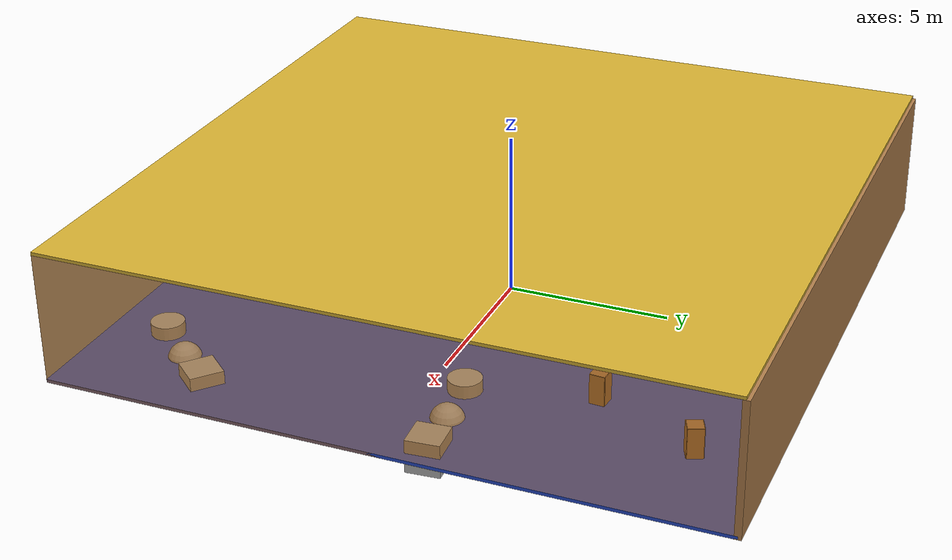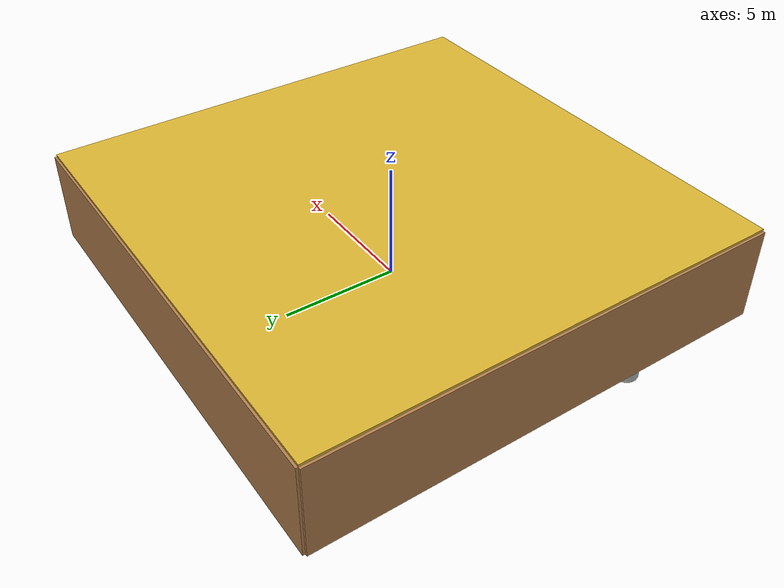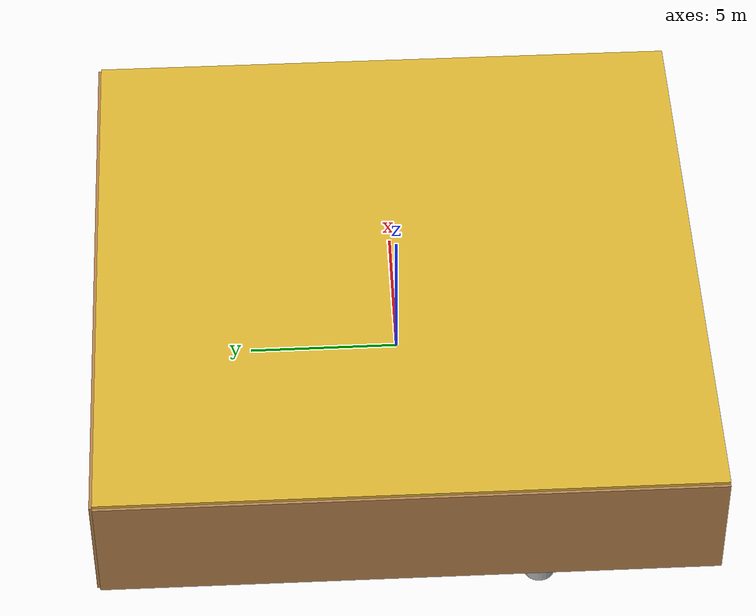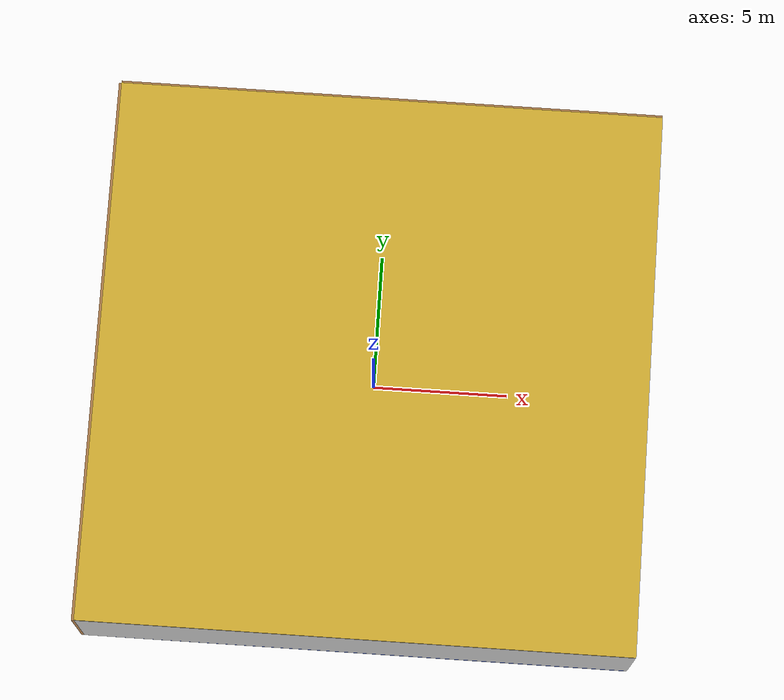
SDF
<sdf version="1.4">
 <world name="default">
  <physics type="ode">
   <max_step_size>0.001</max_step_size>
   <real_time_factor>1</real_time_factor>
   <real_time_update_rate>1000</real_time_update_rate>
   <gravity>0 0 -9.8</gravity>
  </physics>
  <scene><ambient>0.4 0.4 0.4 1</ambient><background>0.7 0.7 0.7 1</background><shadows>1</shadows></scene>
  <model name="Surrounding">
   <static>1</static>
   <link name="Ceiling">
    <collision name="Ceiling_Collision"><geometry><box><size>20 20 0.1</size></box></geometry></collision>
    <visual name="Ceiling_Visual">
     <geometry><box><size>20 20 0.1</size></box></geometry>
     <material>
      <script><uri>file://media/materials/scripts/gazebo.material</uri><name>Gazebo/Gold</name></script>
     </material>
    </visual>
    <pose>0 0 4.05 0 0 0</pose>
   </link>
   <link name="Wall_South">
    <collision name="Wall_South_Collision">
     <geometry><box><size>20 0 4</size></box></geometry>
     <pose>0 0 2 0 -0 0</pose>
    </collision>
    <visual name="Wall_South_Visual">
     <pose>0 0 2 0 -0 0</pose>
     <geometry><box><size>20 0 4</size></box></geometry>
     <material>
      <script><uri>file://media/materials/scripts/gazebo.material</uri><name>Gazebo/JointAnchor</name></script>
     </material>
    </visual>
    <velocity_decay><linear>0</linear><angular>0</angular></velocity_decay>
    <pose>0 -10 0 0 -0 0</pose>
   </link>
   <link name="Wall_East">
    <collision name="Wall_21_Collision">
     <geometry><box><size>20 0 4</size></box></geometry>
     <pose>0 0 2 0 -0 0</pose>
    </collision>
    <visual name="Wall_21_Visual">
     <pose>0 0 2 0 -0 0</pose>
     <geometry><box><size>20 0 4</size></box></geometry>
     <material>
      <script>
       <uri>file://media/materials/scripts/gazebo.material</uri>
       <name>Gazebo/OrangeTransparent</name>
      </script>
     </material>
    </visual>
    <velocity_decay><linear>0</linear><angular>0</angular></velocity_decay>
    <pose>10 0 0 0 -0 1.5708</pose>
   </link>
   <link name="Wall_North">
    <collision name="Wall_22_Collision">
     <geometry><box><size>20 0.2 4</size></box></geometry>
     <pose>0 0 2 0 -0 0</pose>
    </collision>
    <visual name="Wall_22_Visual">
     <pose>0 0 2 0 -0 0</pose>
     <geometry><box><size>20 0.2 4</size></box></geometry>
     <material>
      <script><uri>file://media/materials/scripts/gazebo.material</uri><name>Gazebo/WoodPallet</name></script>
     </material>
    </visual>
    <velocity_decay><linear>0</linear><angular>0</angular></velocity_decay>
    <pose>0 10 0 0 -0 0</pose>
   </link>
   <link name="Wall_West">
    <collision name="Wall_23_Collision">
     <geometry><box><size>20 0.2 4</size></box></geometry>
     <pose>0 0 2 0 -0 0</pose>
    </collision>
    <visual name="Wall_23_Visual">
     <pose>0 0 2 0 -0 0</pose>
     <geometry><box><size>20 0.2 4</size></box></geometry>
     <material>
      <script><uri>file://media/materials/scripts/gazebo.material</uri><name>Gazebo/WoodPallet</name></script>
     </material>
    </visual>
    <velocity_decay><linear>0</linear><angular>0</angular></velocity_decay>
    <pose>-10 0 0 0 0 -1.5708</pose>
   </link>
   <link name="Ground_link">
    <collision name="collision">
     <pose>0 0 .05 0 -0 0</pose>
     <geometry><box><size>20 20 0.1</size></box></geometry>
    </collision>
    <visual name="visual">
     <pose>0 0 .05 0 -0 0</pose>
     <geometry><box><size>20 20 0.1</size></box></geometry>
     <material>
      <script><uri>file://media/materials/scripts/gazebo.material</uri><name>Gazebo/BlueLaser</name></script>
     </material>
    </visual>
   </link>
   <static>1</static>
  </model>
  <spherical_coordinates>
   <surface_model>EARTH_WGS84</surface_model>
   <latitude_deg>0</latitude_deg>
   <longitude_deg>0</longitude_deg>
   <elevation>0</elevation>
   <heading_deg>0</heading_deg>
  </spherical_coordinates>
  <light name="lightball_0" type="diffuse">
   <diffuse>0.8 0.8 0.8 1</diffuse>
   <specular>0.2 0.2 0.2 1</specular>
   <attenuation>
    <range>100</range>
    <constant>0.7</constant>
    <linear>0.01</linear>
    <quadratic>0.001</quadratic>
   </attenuation>
   <direction>-0.5 0.1 -0.9</direction>
   <pose>-1.03867309464 3.84901658464 2.92764349432 0 0 0</pose>
  </light>
  <light name="lightball_1" type="diffuse">
   <diffuse>0.8 0.8 0.8 1</diffuse>
   <specular>0.2 0.2 0.2 1</specular>
   <attenuation>
    <range>100</range>
    <constant>0.7</constant>
    <linear>0.01</linear>
    <quadratic>0.001</quadratic>
   </attenuation>
   <direction>-0.5 0.1 -0.9</direction>
   <pose>4.19361154369 7.47298973144 3.52028026577 0 0 0</pose>
  </light>
  <light name="lightball_2" type="diffuse">
   <diffuse>0.8 0.8 0.8 1</diffuse>
   <specular>0.2 0.2 0.2 1</specular>
   <attenuation>
    <range>100</range>
    <constant>0.7</constant>
    <linear>0.01</linear>
    <quadratic>0.001</quadratic>
   </attenuation>
   <direction>-0.5 0.1 -0.9</direction>
   <pose>-7.1839813901 -4.95605460389 3.15081754041 0 0 0</pose>
  </light>
  <light name="lightball_3" type="diffuse">
   <diffuse>0.8 0.8 0.8 1</diffuse>
   <specular>0.2 0.2 0.2 1</specular>
   <attenuation>
    <range>100</range>
    <constant>0.7</constant>
    <linear>0.01</linear>
    <quadratic>0.001</quadratic>
   </attenuation>
   <direction>-0.5 0.1 -0.9</direction>
   <pose>0.475011559814 4.94725970304 1.84162193524 0 0 0</pose>
  </light>
  <light name="lightball_4" type="diffuse">
   <diffuse>0.8 0.8 0.8 1</diffuse>
   <specular>0.2 0.2 0.2 1</specular>
   <attenuation>
    <range>100</range>
    <constant>0.7</constant>
    <linear>0.01</linear>
    <quadratic>0.001</quadratic>
   </attenuation>
   <direction>-0.5 0.1 -0.9</direction>
   <pose>-7.60623357414 -4.85842995103 2.47146247468 0 0 0</pose>
  </light>
  <light name="lightball_5" type="diffuse">
   <diffuse>0.8 0.8 0.8 1</diffuse>
   <specular>0.2 0.2 0.2 1</specular>
   <attenuation>
    <range>100</range>
    <constant>0.7</constant>
    <linear>0.01</linear>
    <quadratic>0.001</quadratic>
   </attenuation>
   <direction>-0.5 0.1 -0.9</direction>
   <pose>4.58643596669 -9.49304043358 3.47659064128 0 0 0</pose>
  </light>
  <light name="lightball_6" type="diffuse">
   <diffuse>0.8 0.8 0.8 1</diffuse>
   <specular>0.2 0.2 0.2 1</specular>
   <attenuation>
    <range>100</range>
    <constant>0.7</constant>
    <linear>0.01</linear>
    <quadratic>0.001</quadratic>
   </attenuation>
   <direction>-0.5 0.1 -0.9</direction>
   <pose>3.49342287098 2.01939849094 0.947996456917 0 0 0</pose>
  </light>
  <light name="lightball_7" type="diffuse">
   <diffuse>0.8 0.8 0.8 1</diffuse>
   <specular>0.2 0.2 0.2 1</specular>
   <attenuation>
    <range>100</range>
    <constant>0.7</constant>
    <linear>0.01</linear>
    <quadratic>0.001</quadratic>
   </attenuation>
   <direction>-0.5 0.1 -0.9</direction>
   <pose>1.10619452252 -6.42514952368 2.47697666834 0 0 0</pose>
  </light>
  <include>
   <uri>model://textured_shapes</uri>
   <pose>-8.03888894609 -4.33058438501 0 0 0 1.45001814659</pose>
  </include>
  <include><uri>model://table</uri><pose>-4.71681953265 -1.56873584203 0 0 0 2.74599016941</pose></include>
  <include><uri>model://table</uri><pose>-4.35524284481 4.21531173952 0 0 0 0.262586838464</pose></include>
  <include><uri>model://table</uri><pose>0.948946008078 1.71463731423 0 0 0 0.191043808094</pose></include>
  <include><uri>model://table</uri><pose>1.44365701996 4.46395835016 0 0 0 3.0275750732</pose></include>
  <include><uri>model://cabinet</uri><pose>5.29891270252 4.75835628975 0 0 0 1.49257592397</pose></include>
  <include>
   <uri>model://textured_shapes</uri>
   <pose>7.4008875177 -7.08567766702 0 0 0 2.4267339377</pose>
  </include>
  <include>
   <uri>model://textured_shapes</uri>
   <pose>7.6449458014 1.21542209122 0 0 0 1.6469767927</pose>
  </include>
  <include><uri>model://cabinet</uri><pose>6.87626356068 7.92845309927 0 0 0 0.410442071777</pose></include>
 </world>
</sdf>

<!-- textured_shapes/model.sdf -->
<sdf version="1.6">
  <model name="textured_shapes">
    <pose>0 0 0.5 0 0 0</pose>
    <link name="box">
      <pose>0 -1.5 0 0 0 0</pose>
      <collision name="collision">
        <geometry>
          <box>
            <size>1 1 1</size>
          </box>
        </geometry>
      </collision>
      <visual name="visual">
        <geometry>
          <box>
            <size>1 1 1</size>
          </box>
        </geometry>
        <material>
          <script>
            <uri>model://../model_source/models/textured_shapes/materials/scripts</uri>
            <uri>model://../model_source/models/textured_shapes/materials/textures</uri>
            <name>TexturedShape/Squares</name>
          </script>
        </material>
      </visual>
    </link>
    <link name="sphere">
      <collision name="collision">
        <geometry>
          <sphere>
            <radius>0.5</radius>
          </sphere>
        </geometry>
      </collision>
      <visual name="visual">
        <geometry>
          <sphere>
            <radius>0.5</radius>
          </sphere>
        </geometry>
        <material>
          <script>
            <uri>model://../model_source/models/textured_shapes/materials/scripts</uri>
            <uri>model://../model_source/models/textured_shapes/materials/textures</uri>
            <name>TexturedShape/Squares</name>
          </script>
        </material>
      </visual>
    </link>
    <link name="cylinder">
      <pose>0 1.5 0 0 0 0</pose>
      <collision name="collision">
        <geometry>
          <cylinder>
            <radius>0.5</radius>
            <length>1</length>
          </cylinder>
        </geometry>
      </collision>
      <visual name="visual">
        <geometry>
          <cylinder>
            <radius>0.5</radius>
            <length>1</length>
          </cylinder>
        </geometry>
        <material>
          <script>
            <uri>model://../model_source/models/textured_shapes/materials/scripts</uri>
            <uri>model://../model_source/models/textured_shapes/materials/textures</uri>
            <name>TexturedShape/Squares</name>
          </script>
        </material>
      </visual>
    </link>
  </model>
</sdf>

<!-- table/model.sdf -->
<sdf version="1.5">
  <model name="table">
    <static>true</static>
    <link name="link">
      <collision name="surface">
        <pose>0 0 1.0 0 0 0</pose>
        <geometry>
          <box>
            <size>1.5 0.8 0.03</size>
          </box>
        </geometry>
        <surface>
          <friction>
            <ode>
              <mu>0.6</mu>
              <mu2>0.6</mu2>
            </ode>
          </friction>
        </surface>
      </collision>
      <visual name="visual1">
        <pose>0 0 1.0 0 0 0</pose>
        <geometry>
          <box>
            <size>1.5 0.8 0.03</size>
          </box>
        </geometry>
        <material>
          <script>
            <uri>model://media/materials/scripts/gazebo.material</uri>
            <name>Gazebo/Wood</name>
          </script>
        </material>
      </visual>
      <collision name="front_left_leg">
        <pose>0.68 0.38 0.5 0 0 0</pose>
        <geometry>
          <cylinder>
            <radius>0.02</radius>
            <length>1.0</length>
          </cylinder>
        </geometry>
      </collision>
      <visual name="front_left_leg">
        <pose>0.68 0.38 0.5 0 0 0</pose>
        <geometry>
          <cylinder>
            <radius>0.02</radius>
            <length>1.0</length>
          </cylinder>
        </geometry>
        <material>
          <script>
            <uri>model://media/materials/scripts/gazebo.material</uri>
            <name>Gazebo/Grey</name>
          </script>
        </material>
      </visual>
      <collision name="front_right_leg">
        <pose>0.68 -0.38 0.5 0 0 0</pose>
        <geometry>
          <cylinder>
            <radius>0.02</radius>
            <length>1.0</length>
          </cylinder>
        </geometry>
      </collision>
      <visual name="front_right_leg">
        <pose>0.68 -0.38 0.5 0 0 0</pose>
        <geometry>
          <cylinder>
            <radius>0.02</radius>
            <length>1.0</length>
          </cylinder>
        </geometry>
        <material>
          <script>
            <uri>model://media/materials/scripts/gazebo.material</uri>
            <name>Gazebo/Grey</name>
          </script>
        </material>
      </visual>
      <collision name="back_right_leg">
        <pose>-0.68 -0.38 0.5 0 0 0</pose>
        <geometry>
          <cylinder>
            <radius>0.02</radius>
            <length>1.0</length>
          </cylinder>
        </geometry>
      </collision>
      <visual name="back_right_leg">
        <pose>-0.68 -0.38 0.5 0 0 0</pose>
        <geometry>
          <cylinder>
            <radius>0.02</radius>
            <length>1.0</length>
          </cylinder>
        </geometry>
        <material>
          <script>
            <uri>model://media/materials/scripts/gazebo.material</uri>
            <name>Gazebo/Grey</name>
          </script>
        </material>
      </visual>
      <collision name="back_left_leg">
        <pose>-0.68 0.38 0.5 0 0 0</pose>
        <geometry>
          <cylinder>
            <radius>0.02</radius>
            <length>1.0</length>
          </cylinder>
        </geometry>
      </collision>
      <visual name="back_left_leg">
        <pose>-0.68 0.38 0.5 0 0 0</pose>
        <geometry>
          <cylinder>
            <radius>0.02</radius>
            <length>1.0</length>
          </cylinder>
        </geometry>
        <material>
          <script>
            <uri>model://media/materials/scripts/gazebo.material</uri>
            <name>Gazebo/Grey</name>
          </script>
        </material>
      </visual>
    </link>
  </model>
</sdf>

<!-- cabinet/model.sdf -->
<sdf version="1.5">
  <model name="cabinet">
    <static>true</static>
    <link name="cabinet_bottom_plate">
      <inertial>
        <pose>0 0 -1 0 0 0</pose>
        <inertia>
          <ixx>2.050000</ixx>
          <ixy>0</ixy>
          <ixz>0</ixz>
          <iyy>2.050000</iyy>
          <iyz>0</iyz>
          <izz>2.050000</izz>
        </inertia>
        <mass>25.000000</mass>
      </inertial>
      <collision name="cabinet_bottom_plate_geom">
        <pose>0 0 0.010000 0 0 0</pose>
        <geometry>
          <box>
            <size>0.450000 0.450000 0.020000</size>
          </box>
        </geometry>
      </collision>
      <visual name="cabinet_bottom_plate_geom_visual">
        <pose>0 0 0.010000 0 0 0</pose>
        <geometry>
          <box>
            <size>0.450000 0.450000 0.020000</size>
          </box>
        </geometry>
        <material>
          <script>
            <uri>model://media/materials/scripts/gazebo.material</uri>
            <name>Gazebo/Wood</name>
          </script>
        </material>
      </visual>
      <collision name="cabinet_bottom_plate_geom_cabinet_back_plate">
        <pose>0.235000 0 0.510000 0 0 0</pose>
        <geometry>
          <box>
            <size>0.020000 0.450000 1.020000</size>
          </box>
        </geometry>
      </collision>
      <visual name="cabinet_bottom_plate_geom_cabinet_back_plate_visual">
        <pose>0.235000 0 0.510000 0 0 0</pose>
        <geometry>
          <box>
            <size>0.020000 0.450000 1.020000</size>
          </box>
        </geometry>
        <material>
          <script>
            <uri>model://media/materials/scripts/gazebo.material</uri>
            <name>Gazebo/Wood</name>
          </script>
        </material>
      </visual>
      <collision name="cabinet_bottom_plate_geom_cabinet_left_plate">
        <pose>0 0.235000 0.510000 0 0 0</pose>
        <geometry>
          <box>
            <size>0.450000 0.020000 1.020000</size>
          </box>
        </geometry>
      </collision>
      <visual name="cabinet_bottom_plate_geom_cabinet_left_plate_visual">
        <pose>0 0.235000 0.510000 0 0 0</pose>
        <geometry>
          <box>
            <size>0.450000 0.020000 1.020000</size>
          </box>
        </geometry>
        <material>
          <script>
            <uri>model://media/materials/scripts/gazebo.material</uri>
            <name>Gazebo/Wood</name>
          </script>
        </material>
      </visual>
      <collision name="cabinet_bottom_plate_geom_cabinet_middle_plate">
        <pose>0 0 0.510000 0 0 0</pose>
        <geometry>
          <box>
            <size>0.450000 0.450000 0.020000</size>
          </box>
        </geometry>
      </collision>
      <visual name="cabinet_bottom_plate_geom_cabinet_middle_plate_visual">
        <pose>0 0 0.510000 0 0 0</pose>
        <geometry>
          <box>
            <size>0.450000 0.450000 0.020000</size>
          </box>
        </geometry>
        <material>
          <script>
            <uri>model://media/materials/scripts/gazebo.material</uri>
            <name>Gazebo/Wood</name>
          </script>
        </material>
      </visual>
      <collision name="cabinet_bottom_plate_geom_cabinet_right_plate">
        <pose>0 -0.235000 0.510000 0 0 0</pose>
        <geometry>
          <box>
            <size>0.450000 0.020000 1.020000</size>
          </box>
        </geometry>
      </collision>
      <visual name="cabinet_bottom_plate_geom_cabinet_right_plate_visual">
        <pose>0 -0.235000 0.510000 0 0 0</pose>
        <geometry>
          <box>
            <size>0.450000 0.020000 1.020000</size>
          </box>
        </geometry>
        <material>
          <script>
            <uri>model://media/materials/scripts/gazebo.material</uri>
            <name>Gazebo/Wood</name>
          </script>
        </material>
      </visual>
      <collision name="cabinet_bottom_plate_geom_cabinet_top_plate">
        <pose>0 0 1.010000 0 0 0</pose>
        <geometry>
          <box>
            <size>0.450000 0.450000 0.020000</size>
          </box>
        </geometry>
      </collision>
      <visual name="cabinet_bottom_plate_geom_cabinet_top_plate_visual">
        <pose>0 0 1.010000 0 0 0</pose>
        <geometry>
          <box>
            <size>0.450000 0.450000 0.020000</size>
          </box>
        </geometry>
        <material>
          <script>
            <uri>model://media/materials/scripts/gazebo.material</uri>
            <name>Gazebo/Wood</name>
          </script>
        </material>
      </visual>
    </link>
  </model>
</sdf>
